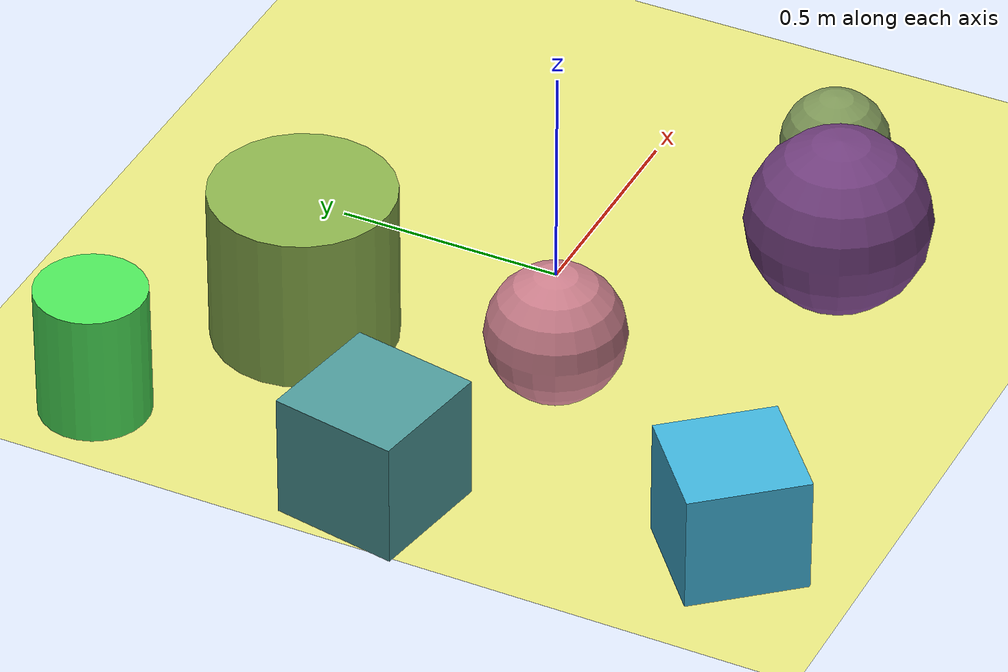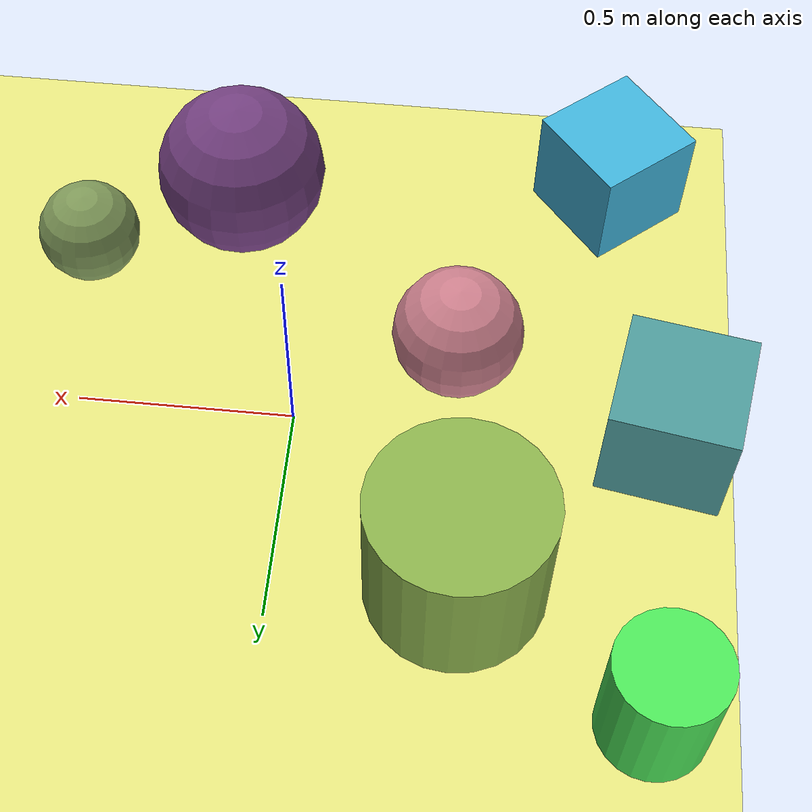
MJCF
<mujoco>
   <asset>
<texture type="skybox" builtin="gradient" rgb1="1.0 0.2 0.6" rgb2="0.9 0.9 0.7" width="256" height="256"/>
<texture name="gradient_0" builtin="gradient" rgb1="0.1 0.6 0.8" rgb2="0.4 0.8 0.9" width="200" height="200"/>
<texture name="checker_1" builtin="checker" rgb1="0.5 0.1 0.1" rgb2="0.4 0.4 0.9" width="200" height="200"/>
<texture name="checker_2" builtin="checker" rgb1="0.6 0.3 0.4" rgb2="0.4 0.9 0.3" width="200" height="200"/>
<texture name="flat_3" builtin="flat" rgb1="0.3 0.6 0.6" rgb2="0.3 0.6 0.6"  width="200" height="200"/>
<texture name="gradient_4" builtin="gradient" rgb1="0.2 0.4 0.0" rgb2="0.9 1.0 0.6" width="200" height="200"/>
<texture name="checker_5" builtin="checker" rgb1="0.8 0.4 0.1" rgb2="0.8 0.6 1.0" width="200" height="200"/>
<texture name="checker_6" builtin="checker" rgb1="0.1 0.8 0.5" rgb2="0.5 1.0 0.2" width="200" height="200"/><material name="gradient_0_mat" reflectance="0" texture="gradient_0" texuniform="true"/>
<material name="checker_1_mat" reflectance="0" texrepeat="4 4" texture="checker_1" texuniform="false" />
<material name="checker_2_mat" reflectance="0" texrepeat="5 5" texture="checker_2" texuniform="false" />
<material name="flat_3_mat" reflectance="0" texture="flat_3" texuniform="true"/>
<material name="gradient_4_mat" reflectance="0" texture="gradient_4" texuniform="true"/>
<material name="checker_5_mat" reflectance="0" texrepeat="9 9" texture="checker_5" texuniform="false" />
<material name="checker_6_mat" reflectance="0" texrepeat="10 10" texture="checker_6" texuniform="false" />
   </asset>

   <worldbody>
      <light diffuse=".9 .9 .9" pos="0 0 3" dir="0 0 -1"/>
     <geom type="plane" size="1 1 0.1" rgba="0.9 0.9 0.5 1"/>
<geom type="box" pos="-0.7 -0.72 0.13" size="0.13 0.13 0.13" material="gradient_0_mat" euler="0 0 40" />
<geom type="sphere" pos="0.19 -0.56 0.2" size="0.2 0.2 0.2" material="checker_1_mat" euler="0 0 6" />
<geom type="sphere" pos="0.54 -0.4 0.12" size="0.12 0.12 0.12" material="checker_2_mat" euler="0 0 70" />
<geom type="box" pos="-0.85 -0.0 0.14" size="0.14 0.14 0.14" material="flat_3_mat" euler="0 0 80" />
<geom type="cylinder" pos="-0.4 0.39 0.18" size="0.2 0.18 0.18" material="gradient_4_mat" euler="0 0 0" />
<geom type="sphere" pos="-0.36 -0.17 0.15" size="0.15 0.15 0.15" material="checker_5_mat" euler="0 0 79" />
<geom type="cylinder" pos="-0.82 0.66 0.15" size="0.12 0.15 0.15" material="checker_6_mat" euler="0 0 25" /><camera euler="60 0 180" fovy="60" name="camera1" pos="-0.2 -1.5 1"></camera>   </worldbody>
</mujoco>
